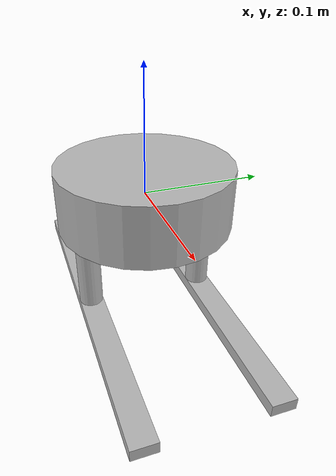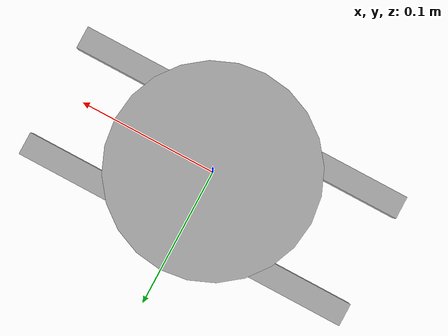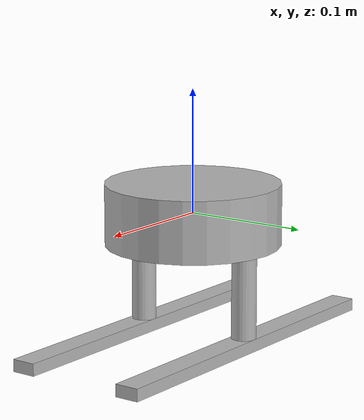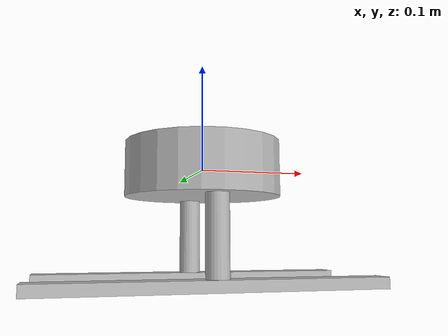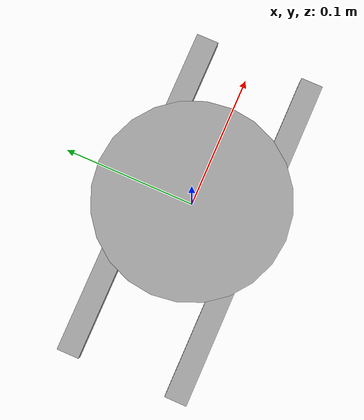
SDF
<sdf version="1.9">
  <model name="base">
    <link name="base_link">
      <pose>0 0 0 0 0 0</pose>

      <inertial>
        <mass>1.964</mass>
        <inertia>
          <ixx>0.00414594</ixx>
          <iyy>0.00314594</iyy>
          <izz>0.00534206</izz>
          <ixy>0</ixy>
          <ixz>0</ixz>
          <iyz>0</iyz>
        </inertia>
      </inertial>

      <!-- Main body -->
      <collision name="base_collision">
        <geometry>
          <cylinder>
            <length>0.05</length>
            <radius>0.071</radius>
          </cylinder>
        </geometry>
      </collision>

      <visual name="base_visual">
        <geometry>
          <cylinder>
            <length>0.05</length>
            <radius>0.071</radius>
          </cylinder>
        </geometry>
      </visual>

      <!-- Landing gear legs (left & right) -->
      <collision name="gear_leg_left">
        <pose>0 0.05 -0.05 0 0 0</pose>
        <geometry>
          <cylinder>
            <length>0.1</length>
            <radius>0.01</radius>
          </cylinder>
        </geometry>
      </collision>

      <visual name="gear_leg_left_visual">
        <pose>0 0.05 -0.05 0 0 0</pose>
        <geometry>
          <cylinder>
            <length>0.1</length>
            <radius>0.01</radius>
          </cylinder>
        </geometry>
      </visual>

      <collision name="gear_leg_right">
        <pose>0 -0.05 -0.05 0 0 0</pose>
        <geometry>
          <cylinder>
            <length>0.1</length>
            <radius>0.01</radius>
          </cylinder>
        </geometry>
      </collision>

      <visual name="gear_leg_right_visual">
        <pose>0 -0.05 -0.05 0 0 0</pose>
        <geometry>
          <cylinder>
            <length>0.1</length>
            <radius>0.01</radius>
          </cylinder>
        </geometry>
      </visual>

      <!-- Skids -->
      <collision name="gear_skid_left">
        <pose>0 0.05 -0.1 0 0 0</pose>
        <geometry>
          <box>
            <size>0.3 0.02 0.01</size>
          </box>
        </geometry>
      </collision>

      <visual name="gear_skid_left_visual">
        <pose>0 0.05 -0.1 0 0 0</pose>
        <geometry>
          <box>
            <size>0.3 0.02 0.01</size>
          </box>
        </geometry>
      </visual>

      <collision name="gear_skid_right">
        <pose>0 -0.05 -0.1 0 0 0</pose>
        <geometry>
          <box>
            <size>0.3 0.02 0.01</size>
          </box>
        </geometry>
      </collision>

      <visual name="gear_skid_right_visual">
        <pose>0 -0.05 -0.1 0 0 0</pose>
        <geometry>
          <box>
            <size>0.3 0.02 0.01</size>
          </box>
        </geometry>
      </visual>

      <!-- IMU Sensor -->
      <sensor name="onboard_imu_sensor" type="imu">
        <always_on>true</always_on>
        <update_rate>100.0</update_rate>
        <pose>0 0 0 0 0 0</pose>
        <topic>/model/variable_tilt_hexacopter/imu</topic>
        <imu>
          <angular_velocity>
            <x>
              <noise type="gaussian">
                <mean>0</mean>
                <stddev>0.009</stddev>
                <bias_mean>0.00075</bias_mean>
                <bias_stddev>0.005</bias_stddev>
                <dynamic_bias_stddev>0.00002</dynamic_bias_stddev>
                <dynamic_bias_correlation_time>400.0</dynamic_bias_correlation_time>
                <precision>0.00025</precision>
              </noise>
            </x>
            <y>
              <noise type="gaussian">
                <mean>0</mean>
                <stddev>0.009</stddev>
                <bias_mean>0.00075</bias_mean>
                <bias_stddev>0.005</bias_stddev>
                <dynamic_bias_stddev>0.00002</dynamic_bias_stddev>
                <dynamic_bias_correlation_time>400.0</dynamic_bias_correlation_time>
                <precision>0.00025</precision>
              </noise>
            </y>
            <z>
              <noise type="gaussian">
                <mean>0</mean>
                <stddev>0.009</stddev>
                <bias_mean>0.00075</bias_mean>
                <bias_stddev>0.005</bias_stddev>
                <dynamic_bias_stddev>0.00002</dynamic_bias_stddev>
                <dynamic_bias_correlation_time>400.0</dynamic_bias_correlation_time>
                <precision>0.00025</precision>
              </noise>
            </z>
          </angular_velocity>

          <linear_acceleration>
            <x>
              <noise type="gaussian">
                <mean>0</mean>
                <stddev>0.021</stddev>
                <bias_mean>0.05</bias_mean>
                <bias_stddev>0.0075</bias_stddev>
                <dynamic_bias_stddev>0.000375</dynamic_bias_stddev>
                <dynamic_bias_correlation_time>175.0</dynamic_bias_correlation_time>
                <precision>0.005</precision>
              </noise>
            </x>
            <y>
              <noise type="gaussian">
                <mean>0</mean>
                <stddev>0.021</stddev>
                <bias_mean>0.05</bias_mean>
                <bias_stddev>0.0075</bias_stddev>
                <dynamic_bias_stddev>0.000375</dynamic_bias_stddev>
                <dynamic_bias_correlation_time>175.0</dynamic_bias_correlation_time>
                <precision>0.005</precision>
              </noise>
            </y>
            <z>
              <noise type="gaussian">
                <mean>0</mean>
                <stddev>0.021</stddev>
                <bias_mean>0.05</bias_mean>
                <bias_stddev>0.0075</bias_stddev>
                <dynamic_bias_stddev>0.000375</dynamic_bias_stddev>
                <dynamic_bias_correlation_time>175.0</dynamic_bias_correlation_time>
                <precision>0.005</precision>
              </noise>
            </z>
            </linear_acceleration>

            <orientation>
              <noise type="gaussian">
                <mean>0</mean>
                <stddev>0.001</stddev> <!-- Small noise on fused orientation -->
              </noise>
            </orientation>
        </imu>
        <plugin filename="ignition-gazebo-imu-system" name="ignition::gazebo::systems::Imu"/>
      </sensor>

    </link>
  </model>
</sdf>
